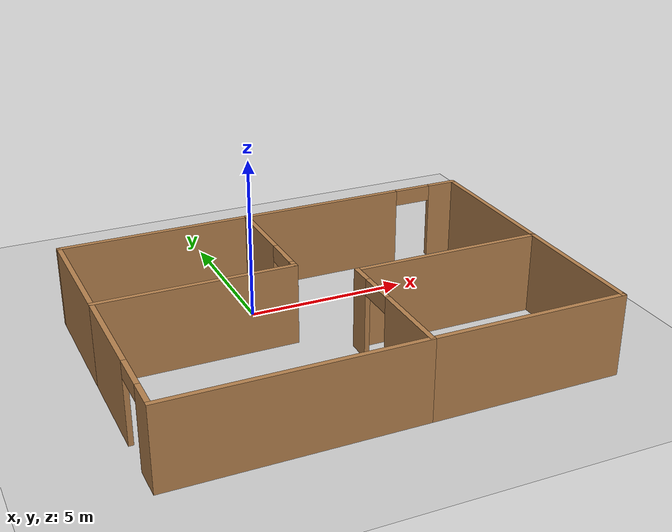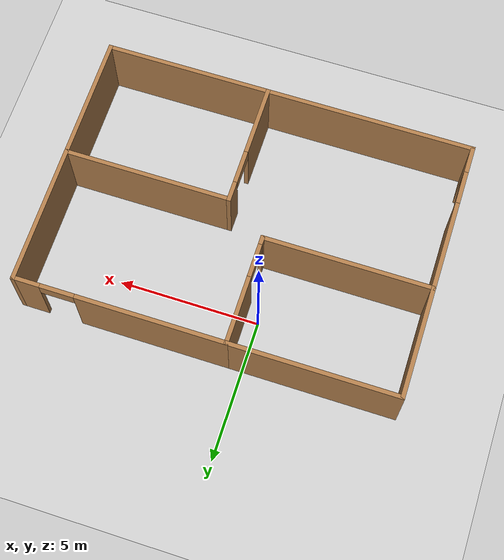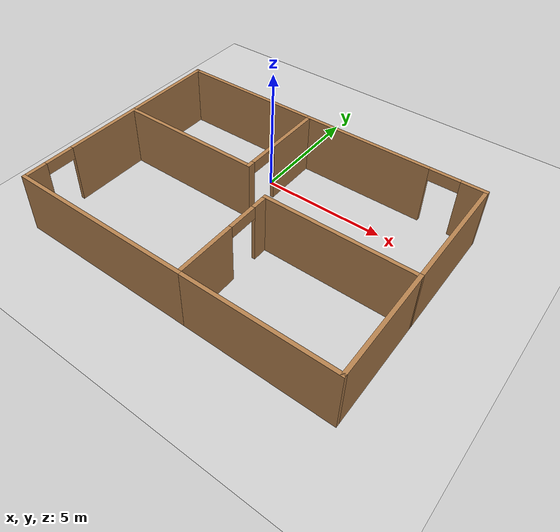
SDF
<sdf version="1.7">
 <world name="default">
  <light name="sun" type="directional">
   <pose>0 0 10 0 -0 0</pose>
   <diffuse>0.8 0.8 0.8 1</diffuse>
   <specular>0.2 0.2 0.2 1</specular>
   <attenuation>
    <range>1000</range>
    <constant>0.9</constant>
    <linear>0.01</linear>
    <quadratic>0.001</quadratic>
   </attenuation>
   <direction>-0.5 0.1 -0.9</direction>
   <spot><inner_angle>0</inner_angle><outer_angle>0</outer_angle><falloff>0</falloff></spot>
  </light>
  <model name="ground_plane">
   <static>1</static>
   <link name="link">
    <collision name="collision">
     <geometry><plane><normal>0 0 1</normal><size>100 100</size></plane></geometry>
     <surface><friction><ode><mu>100</mu><mu2>50</mu2></ode></friction></surface>
    </collision>
    <visual name="visual">
     <cast_shadows>0</cast_shadows>
     <geometry><plane><normal>0 0 1</normal><size>100 100</size></plane></geometry>
     <material>
      <script><uri>file://media/materials/scripts/gazebo.material</uri><name>Gazebo/Grey</name></script>
     </material>
    </visual>
   </link>
  </model>
  <gravity>0 0 -9.8</gravity>
  <magnetic_field>6e-06 2.3e-05 -4.2e-05</magnetic_field>
  <atmosphere type="adiabatic"/>
  <physics type="ode">
   <max_step_size>0.001</max_step_size>
   <real_time_factor>1</real_time_factor>
   <real_time_update_rate>1000</real_time_update_rate>
  </physics>
  <scene><ambient>0.4 0.4 0.4 1</ambient><background>0.7 0.7 0.7 1</background><shadows>1</shadows></scene>
  <spherical_coordinates>
   <surface_model>EARTH_WGS84</surface_model>
   <latitude_deg>0</latitude_deg>
   <longitude_deg>0</longitude_deg>
   <elevation>0</elevation>
   <heading_deg>0</heading_deg>
  </spherical_coordinates>
  <model name="ROBOCUP">
   <pose>1.27981 -2.69438 0 0 -0 0</pose>
   <link name="Wall_0">
    <collision name="Wall_0_Collision">
     <geometry><box><size>4 0.15 2.5</size></box></geometry>
     <pose>0 0 1.25 0 -0 0</pose>
    </collision>
    <visual name="Wall_0_Visual">
     <pose>0 0 1.25 0 -0 0</pose>
     <geometry><box><size>4 0.15 2.5</size></box></geometry>
     <material>
      <script><uri>file://media/materials/scripts/gazebo.material</uri><name>Gazebo/Wood</name></script>
      <ambient>1 1 1 1</ambient>
     </material>
     <meta><layer>0</layer></meta>
    </visual>
    <pose>-6.6 2.49905 0 0 -0 -1.5708</pose>
   </link>
   <link name="Wall_1">
    <collision name="Wall_1_Collision">
     <geometry><box><size>6 0.15 2.5</size></box></geometry>
     <pose>0 0 1.25 0 -0 0</pose>
    </collision>
    <visual name="Wall_1_Visual">
     <pose>0 0 1.25 0 -0 0</pose>
     <geometry><box><size>6 0.15 2.5</size></box></geometry>
     <material>
      <script><uri>file://media/materials/scripts/gazebo.material</uri><name>Gazebo/Wood</name></script>
      <ambient>1 1 1 1</ambient>
     </material>
     <meta><layer>0</layer></meta>
    </visual>
    <pose>-3.675 0.57405 0 0 -0 0</pose>
   </link>
   <link name="Wall_10">
    <collision name="Wall_10_Collision">
     <geometry><box><size>6 0.15 2.5</size></box></geometry>
     <pose>0 0 1.25 0 -0 0</pose>
    </collision>
    <visual name="Wall_10_Visual">
     <pose>0 0 1.25 0 -0 0</pose>
     <geometry><box><size>6 0.15 2.5</size></box></geometry>
     <material>
      <script><uri>file://media/materials/scripts/gazebo.material</uri><name>Gazebo/Wood</name></script>
      <ambient>1 1 1 1</ambient>
     </material>
     <meta><layer>0</layer></meta>
    </visual>
    <pose>3.675 -0.42595 0 0 -0 0</pose>
   </link>
   <link name="Wall_11">
    <collision name="Wall_11_Collision">
     <geometry><box><size>4.5 0.15 2.5</size></box></geometry>
     <pose>0 0 1.25 0 -0 0</pose>
    </collision>
    <visual name="Wall_11_Visual">
     <pose>0 0 1.25 0 -0 0</pose>
     <geometry><box><size>4.5 0.15 2.5</size></box></geometry>
     <material>
      <script><uri>file://media/materials/scripts/gazebo.material</uri><name>Gazebo/Wood</name></script>
      <ambient>1 1 1 1</ambient>
     </material>
     <meta><layer>0</layer></meta>
    </visual>
    <pose>6.6 -2.60095 0 0 -0 -1.5708</pose>
   </link>
   <link name="Wall_12">
    <collision name="Wall_12_Collision">
     <geometry><box><size>6 0.15 2.5</size></box></geometry>
     <pose>0 0 1.25 0 -0 0</pose>
    </collision>
    <visual name="Wall_12_Visual">
     <pose>0 0 1.25 0 -0 0</pose>
     <geometry><box><size>6 0.15 2.5</size></box></geometry>
     <material>
      <script><uri>file://media/materials/scripts/gazebo.material</uri><name>Gazebo/Wood</name></script>
      <ambient>1 1 1 1</ambient>
     </material>
     <meta><layer>0</layer></meta>
    </visual>
    <pose>3.675 -4.77595 0 0 -0 3.14159</pose>
   </link>
   <link name="Wall_14">
    <collision name="Wall_14_Collision">
     <geometry><box><size>5 0.15 2.5</size></box></geometry>
     <pose>0 0 1.25 0 -0 0</pose>
    </collision>
    <visual name="Wall_14_Visual">
     <pose>0 0 1.25 0 -0 0</pose>
     <geometry><box><size>5 0.15 2.5</size></box></geometry>
     <material>
      <script><uri>file://media/materials/scripts/gazebo.material</uri><name>Gazebo/Wood</name></script>
      <ambient>1 1 1 1</ambient>
     </material>
     <meta><layer>0</layer></meta>
    </visual>
    <pose>6.6 1.99905 0 0 -0 1.5708</pose>
   </link>
   <link name="Wall_15">
    <pose>2.925 4.42405 0 0 -0 3.14159</pose>
    <visual name="Wall_15_Visual_0">
     <pose>-3.24544 0 1.25 0 -0 0</pose>
     <geometry><box><size>1.00913 0.15 2.5</size></box></geometry>
     <material>
      <script><uri>file://media/materials/scripts/gazebo.material</uri><name>Gazebo/Wood</name></script>
      <ambient>1 1 1 1</ambient>
     </material>
     <meta><layer>0</layer></meta>
    </visual>
    <collision name="Wall_15_Collision_0">
     <geometry><box><size>1.00913 0.15 2.5</size></box></geometry>
     <pose>-3.24544 0 1.25 0 -0 0</pose>
    </collision>
    <visual name="Wall_15_Visual_1">
     <pose>1.10456 0 1.25 0 -0 0</pose>
     <geometry><box><size>5.29087 0.15 2.5</size></box></geometry>
     <material>
      <script><uri>file://media/materials/scripts/gazebo.material</uri><name>Gazebo/Wood</name></script>
      <ambient>1 1 1 1</ambient>
     </material>
     <meta><layer>0</layer></meta>
    </visual>
    <collision name="Wall_15_Collision_1">
     <geometry><box><size>5.29087 0.15 2.5</size></box></geometry>
     <pose>1.10456 0 1.25 0 -0 0</pose>
    </collision>
    <visual name="Wall_15_Visual_2">
     <pose>-2.14087 0 2.25 0 -0 0</pose>
     <geometry><box><size>1.2 0.15 0.5</size></box></geometry>
     <material>
      <script><uri>file://media/materials/scripts/gazebo.material</uri><name>Gazebo/Wood</name></script>
      <ambient>1 1 1 1</ambient>
     </material>
     <meta><layer>0</layer></meta>
    </visual>
    <collision name="Wall_15_Collision_2">
     <geometry><box><size>1.2 0.15 0.5</size></box></geometry>
     <pose>-2.14087 0 2.25 0 -0 0</pose>
    </collision>
   </link>
   <link name="Wall_2">
    <pose>-0.75 2.49905 0 0 -0 1.5708</pose>
    <visual name="Wall_2_Visual_0">
     <pose>-1.83596 0 1.25 0 -0 0</pose>
     <geometry><box><size>0.328078 0.15 2.5</size></box></geometry>
     <material>
      <script><uri>file://media/materials/scripts/gazebo.material</uri><name>Gazebo/Wood</name></script>
      <ambient>1 1 1 1</ambient>
     </material>
     <meta><layer>0</layer></meta>
    </visual>
    <collision name="Wall_2_Collision_0">
     <geometry><box><size>0.328078 0.15 2.5</size></box></geometry>
     <pose>-1.83596 0 1.25 0 -0 0</pose>
    </collision>
    <visual name="Wall_2_Visual_1">
     <pose>0.764039 0 1.25 0 -0 0</pose>
     <geometry><box><size>2.47192 0.15 2.5</size></box></geometry>
     <material>
      <script><uri>file://media/materials/scripts/gazebo.material</uri><name>Gazebo/Wood</name></script>
      <ambient>1 1 1 1</ambient>
     </material>
     <meta><layer>0</layer></meta>
    </visual>
    <collision name="Wall_2_Collision_1">
     <geometry><box><size>2.47192 0.15 2.5</size></box></geometry>
     <pose>0.764039 0 1.25 0 -0 0</pose>
    </collision>
    <visual name="Wall_2_Visual_2">
     <pose>-1.07192 0 2.25 0 -0 0</pose>
     <geometry><box><size>1.2 0.15 0.5</size></box></geometry>
     <material>
      <script><uri>file://media/materials/scripts/gazebo.material</uri><name>Gazebo/Wood</name></script>
      <ambient>1 1 1 1</ambient>
     </material>
     <meta><layer>0</layer></meta>
    </visual>
    <collision name="Wall_2_Collision_2">
     <geometry><box><size>1.2 0.15 0.5</size></box></geometry>
     <pose>-1.07192 0 2.25 0 -0 0</pose>
    </collision>
   </link>
   <link name="Wall_3">
    <collision name="Wall_3_Collision">
     <geometry><box><size>6 0.15 2.5</size></box></geometry>
     <pose>0 0 1.25 0 -0 0</pose>
    </collision>
    <visual name="Wall_3_Visual">
     <pose>0 0 1.25 0 -0 0</pose>
     <geometry><box><size>6 0.15 2.5</size></box></geometry>
     <material>
      <script><uri>file://media/materials/scripts/gazebo.material</uri><name>Gazebo/Wood</name></script>
      <ambient>1 1 1 1</ambient>
     </material>
     <meta><layer>0</layer></meta>
    </visual>
    <pose>-3.675 4.42405 0 0 -0 3.14159</pose>
   </link>
   <link name="Wall_7">
    <pose>-6.6 -2.10095 0 0 -0 -1.5708</pose>
    <visual name="Wall_7_Visual_0">
     <pose>-1.10587 0 1.25 0 -0 0</pose>
     <geometry><box><size>3.28827 0.15 2.5</size></box></geometry>
     <material>
      <script><uri>file://media/materials/scripts/gazebo.material</uri><name>Gazebo/Wood</name></script>
      <ambient>1 1 1 1</ambient>
     </material>
     <meta><layer>0</layer></meta>
    </visual>
    <collision name="Wall_7_Collision_0">
     <geometry><box><size>3.28827 0.15 2.5</size></box></geometry>
     <pose>-1.10587 0 1.25 0 -0 0</pose>
    </collision>
    <visual name="Wall_7_Visual_1">
     <pose>2.24413 0 1.25 0 -0 0</pose>
     <geometry><box><size>1.01173 0.15 2.5</size></box></geometry>
     <material>
      <script><uri>file://media/materials/scripts/gazebo.material</uri><name>Gazebo/Wood</name></script>
      <ambient>1 1 1 1</ambient>
     </material>
     <meta><layer>0</layer></meta>
    </visual>
    <collision name="Wall_7_Collision_1">
     <geometry><box><size>1.01173 0.15 2.5</size></box></geometry>
     <pose>2.24413 0 1.25 0 -0 0</pose>
    </collision>
    <visual name="Wall_7_Visual_2">
     <pose>1.13827 0 2.25 0 -0 0</pose>
     <geometry><box><size>1.2 0.15 0.5</size></box></geometry>
     <material>
      <script><uri>file://media/materials/scripts/gazebo.material</uri><name>Gazebo/Wood</name></script>
      <ambient>1 1 1 1</ambient>
     </material>
     <meta><layer>0</layer></meta>
    </visual>
    <collision name="Wall_7_Collision_2">
     <geometry><box><size>1.2 0.15 0.5</size></box></geometry>
     <pose>1.13827 0 2.25 0 -0 0</pose>
    </collision>
   </link>
   <link name="Wall_8">
    <collision name="Wall_8_Collision">
     <geometry><box><size>7.5 0.15 2.5</size></box></geometry>
     <pose>0 0 1.25 0 -0 0</pose>
    </collision>
    <visual name="Wall_8_Visual">
     <pose>0 0 1.25 0 -0 0</pose>
     <geometry><box><size>7.5 0.15 2.5</size></box></geometry>
     <material>
      <script><uri>file://media/materials/scripts/gazebo.material</uri><name>Gazebo/Wood</name></script>
      <ambient>1 1 1 1</ambient>
     </material>
     <meta><layer>0</layer></meta>
    </visual>
    <pose>-2.925 -4.77595 0 0 -0 0</pose>
   </link>
   <link name="Wall_9">
    <pose>0.75 -2.60095 0 0 -0 1.5708</pose>
    <visual name="Wall_9_Visual_0">
     <pose>-0.969763 0 1.25 0 -0 0</pose>
     <geometry><box><size>2.56047 0.15 2.5</size></box></geometry>
     <material>
      <script><uri>file://media/materials/scripts/gazebo.material</uri><name>Gazebo/Wood</name></script>
      <ambient>1 1 1 1</ambient>
     </material>
     <meta><layer>0</layer></meta>
    </visual>
    <collision name="Wall_9_Collision_0">
     <geometry><box><size>2.56047 0.15 2.5</size></box></geometry>
     <pose>-0.969763 0 1.25 0 -0 0</pose>
    </collision>
    <visual name="Wall_9_Visual_1">
     <pose>1.88024 0 1.25 0 -0 0</pose>
     <geometry><box><size>0.739526 0.15 2.5</size></box></geometry>
     <material>
      <script><uri>file://media/materials/scripts/gazebo.material</uri><name>Gazebo/Wood</name></script>
      <ambient>1 1 1 1</ambient>
     </material>
     <meta><layer>0</layer></meta>
    </visual>
    <collision name="Wall_9_Collision_1">
     <geometry><box><size>0.739526 0.15 2.5</size></box></geometry>
     <pose>1.88024 0 1.25 0 -0 0</pose>
    </collision>
    <visual name="Wall_9_Visual_2">
     <pose>0.910474 0 2.25 0 -0 0</pose>
     <geometry><box><size>1.2 0.15 0.5</size></box></geometry>
     <material>
      <script><uri>file://media/materials/scripts/gazebo.material</uri><name>Gazebo/Wood</name></script>
      <ambient>1 1 1 1</ambient>
     </material>
     <meta><layer>0</layer></meta>
    </visual>
    <collision name="Wall_9_Collision_2">
     <geometry><box><size>1.2 0.15 0.5</size></box></geometry>
     <pose>0.910474 0 2.25 0 -0 0</pose>
    </collision>
   </link>
   <static>1</static>
  </model>
 </world>
</sdf>
